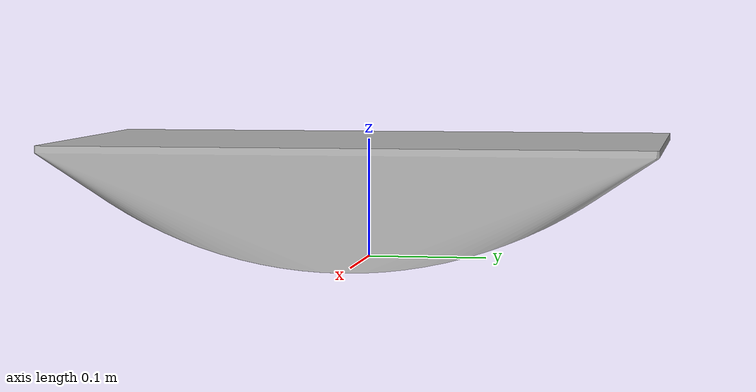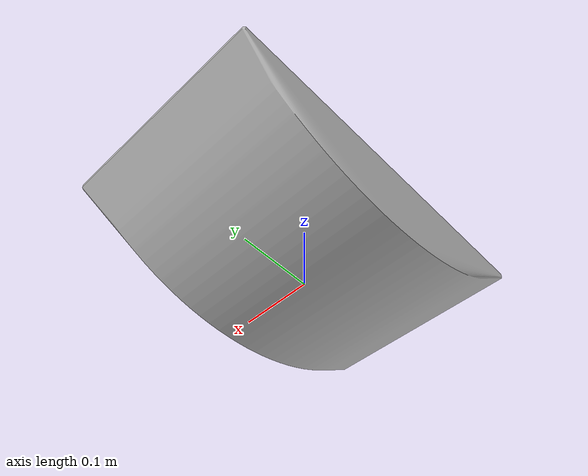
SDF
<?xml version='1.0'?>
<sdf version="1.5">
<model name="seesaw">
	<pose>0 0 0.10 0 0 0</pose>
    <link name="seesaw">
      <sensor name='imu_sensor' type='imu'>
         <always_on>1</always_on>
         <update_rate>100</update_rate>
         <visualize>1</visualize>
         <imu/>
         <plugin name='seesaw_yarp_gazebo_plugin_IMU' filename='libgazebo_yarp_imu.so'>
            <yarpConfigurationFile>model://seesaw/conf/gazebo_seesaw_inertial.ini</yarpConfigurationFile>
         </plugin>
      </sensor>
			<inertial>
               <!-- inertia elements extracted from seesaw_mass_properties.dat file -->
			   <pose>0.0 0.0 -0.020045615 0 -0 0</pose>

        		   <mass>4.263831</mass>
        		   <inertia>
        		         <ixx>0.076698599</ixx>
        		         <ixy>0.0</ixy>
        		         <ixz>0.0</ixz>
        		         <iyy>0.039590108</iyy>
        		         <iyz>0.0</iyz>
        		         <izz>0.10893139</izz>
        		   </inertia>
      		</inertial>
      		<collision name='seesaw_collision'>
                <geometry>
                   <mesh>
                     <scale>0.001 0.001 0.001</scale>
                     <uri>model://seesaw/seesaw.stl</uri>
                  </mesh>
                </geometry>
        		<max_contacts>10</max_contacts>
        		<surface>
          			<contact>
            			<ode>
              				<soft_erp>0.2</soft_erp>
              				<soft_cfm>0</soft_cfm>
              				<kp>18000000</kp>
              				<kd>100</kd>
              				<max_vel>100</max_vel>
              				<min_depth>0.0001</min_depth>
            			</ode>
                </contact>
          			<friction>
            			<ode>
              				<mu>1</mu>
              				<mu2>1</mu2>
              				<fdir1>0 0 0</fdir1>
              				<slip1>0</slip1>
              				<slip2>0</slip2>
            			</ode>
          			</friction>
          			<bounce>
            			<restitution_coefficient>0</restitution_coefficient>
            			<threshold>100000</threshold>
          			</bounce>
        		</surface>
      		</collision>

			<visual name="seesaw_visual">
                <geometry>
                   <mesh>
                     <scale>0.001 0.001 0.001</scale>
                     <uri>model://seesaw/seesaw.stl</uri>
                  </mesh>
                </geometry>
			</visual>

		</link>

</model>
</sdf>
